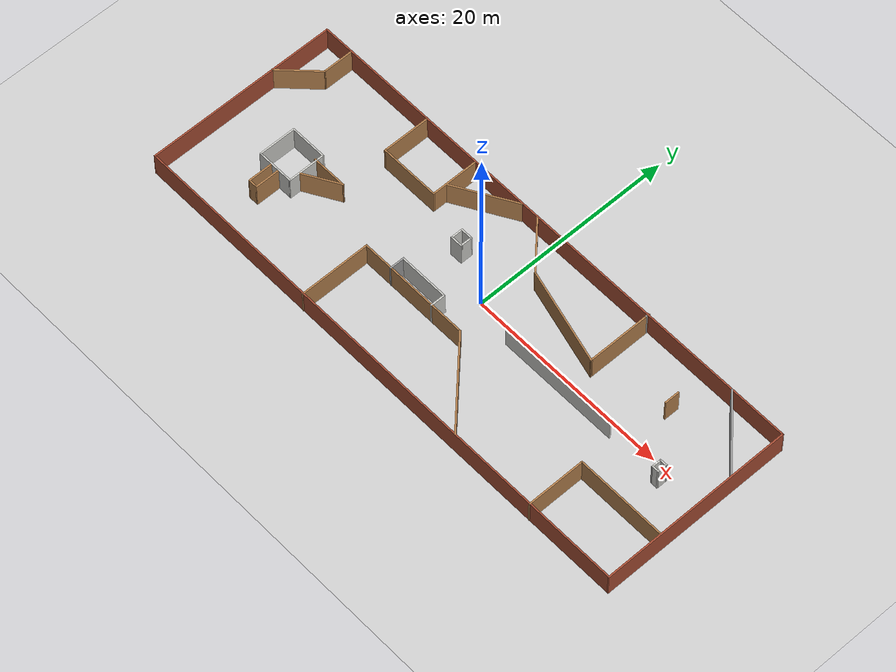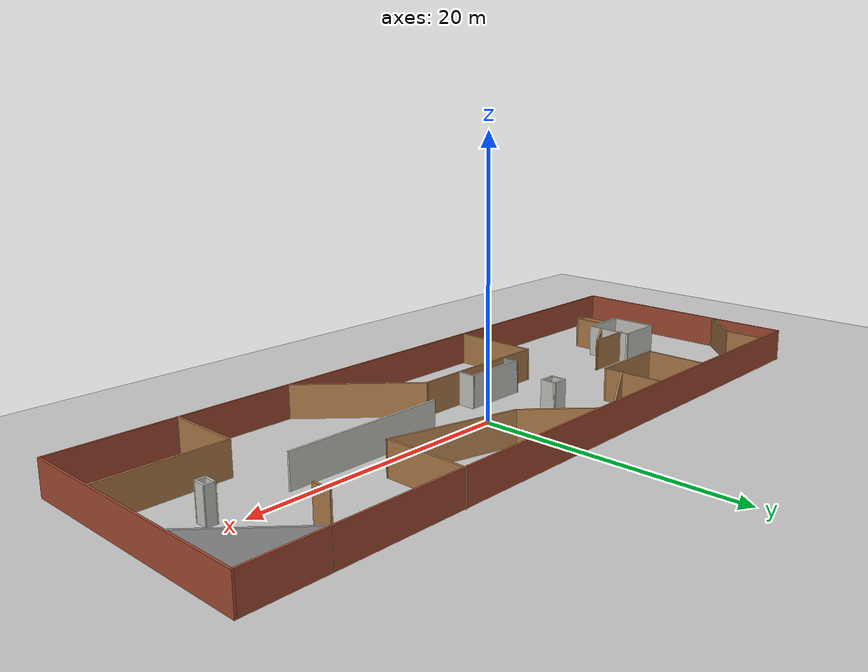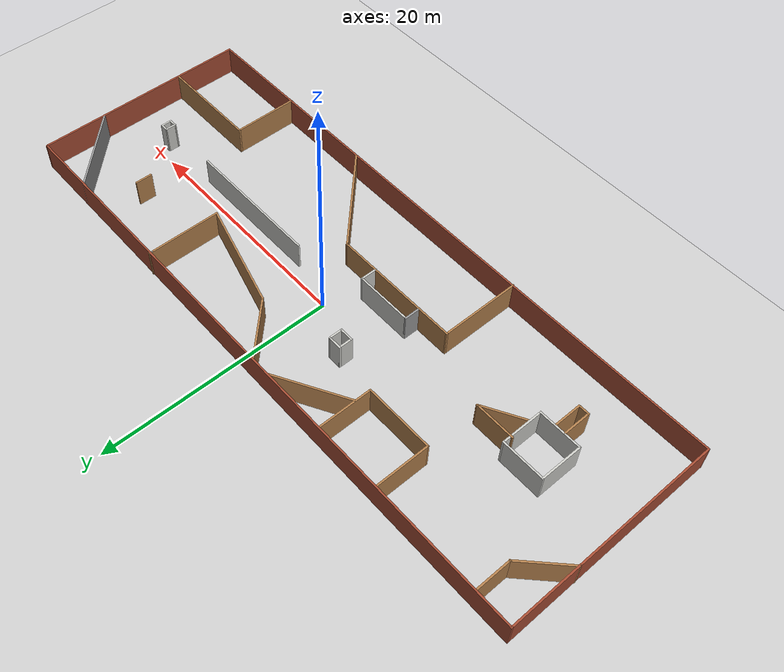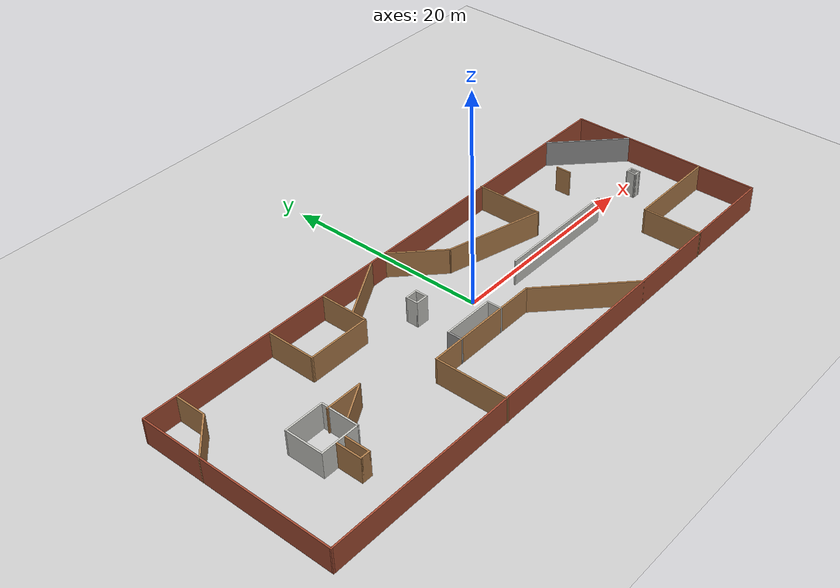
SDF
<sdf version="1.6">
 <world name="default">
  <model name="ground_plane">
   <static>1</static>
   <link name="link">
    <collision name="collision">
     <geometry><plane><normal>0 0 1</normal><size>100 100</size></plane></geometry>
     <surface><friction><ode><mu>100</mu><mu2>50</mu2></ode></friction></surface>
    </collision>
    <visual name="visual">
     <cast_shadows>0</cast_shadows>
     <geometry><plane><normal>0 0 1</normal><size>100 100</size></plane></geometry>
     <material>
      <script><uri>file://media/materials/scripts/gazebo.material</uri><name>Gazebo/Grey</name></script>
     </material>
    </visual>
   </link>
  </model>
  <model name="CustomHouse">
   <pose>-0.675706 -1.43163 0 0 -0 0</pose>
   <link name="Wall_0">
    <collision name="Wall_0_Collision">
     <geometry><box><size>53.75 0.15 2.5</size></box></geometry>
     <pose>0 0 1.25 0 -0 0</pose>
    </collision>
    <visual name="Wall_0_Visual">
     <pose>0 0 1.25 0 -0 0</pose>
     <geometry><box><size>53.75 0.15 2.5</size></box></geometry>
     <material>
      <script><uri>file://media/materials/scripts/gazebo.material</uri><name>Gazebo/Bricks</name></script>
      <ambient>1 1 1 1</ambient>
     </material>
     <meta><layer>0</layer></meta>
    </visual>
    <pose>0.022462 -9.43673 0 0 -0 0</pose>
   </link>
   <link name="Wall_1">
    <collision name="Wall_1_Collision">
     <geometry><box><size>19 0.15 2.5</size></box></geometry>
     <pose>0 0 1.25 0 -0 0</pose>
    </collision>
    <visual name="Wall_1_Visual">
     <pose>0 0 1.25 0 -0 0</pose>
     <geometry><box><size>19 0.15 2.5</size></box></geometry>
     <material>
      <script><uri>file://media/materials/scripts/gazebo.material</uri><name>Gazebo/Bricks</name></script>
      <ambient>1 1 1 1</ambient>
     </material>
     <meta><layer>0</layer></meta>
    </visual>
    <pose>26.8225 -0.011732 0 0 -0 1.5708</pose>
   </link>
   <link name="Wall_11">
    <collision name="Wall_11_Collision">
     <geometry><box><size>11.25 0.15 2.5</size></box></geometry>
     <pose>0 0 1.25 0 -0 0</pose>
    </collision>
    <visual name="Wall_11_Visual">
     <pose>0 0 1.25 0 -0 0</pose>
     <geometry><box><size>11.25 0.15 2.5</size></box></geometry>
     <material>
      <script><uri>file://media/materials/scripts/gazebo.material</uri><name>Gazebo/Wood</name></script>
      <ambient>1 1 1 1</ambient>
     </material>
     <meta><layer>0</layer></meta>
    </visual>
    <pose>-2.9814 -2.62851 0 0 -0 0</pose>
   </link>
   <link name="Wall_12">
    <collision name="Wall_12_Collision">
     <geometry><box><size>9.75 0.15 2.5</size></box></geometry>
     <pose>0 0 1.25 0 -0 0</pose>
    </collision>
    <visual name="Wall_12_Visual">
     <pose>0 0 1.25 0 -0 0</pose>
     <geometry><box><size>9.75 0.15 2.5</size></box></geometry>
     <material>
      <script><uri>file://media/materials/scripts/gazebo.material</uri><name>Gazebo/Wood</name></script>
      <ambient>1 1 1 1</ambient>
     </material>
     <meta><layer>0</layer></meta>
    </visual>
    <pose>5.96272 -6.02262 0 0 0 -0.785398</pose>
   </link>
   <link name="Wall_14">
    <collision name="Wall_14_Collision">
     <geometry><box><size>5.5 0.15 2.5</size></box></geometry>
     <pose>0 0 1.25 0 -0 0</pose>
    </collision>
    <visual name="Wall_14_Visual">
     <pose>0 0 1.25 0 -0 0</pose>
     <geometry><box><size>5.5 0.15 2.5</size></box></geometry>
     <material>
      <script><uri>file://media/materials/scripts/gazebo.material</uri><name>Gazebo/Wood</name></script>
      <ambient>1 1 1 1</ambient>
     </material>
     <meta><layer>0</layer></meta>
    </visual>
    <pose>0.740115 7.43998 0 0 0 -0.785398</pose>
   </link>
   <link name="Wall_15">
    <collision name="Wall_15_Collision">
     <geometry><box><size>9.5 0.15 2.5</size></box></geometry>
     <pose>0 0 1.25 0 -0 0</pose>
    </collision>
    <visual name="Wall_15_Visual">
     <pose>0 0 1.25 0 -0 0</pose>
     <geometry><box><size>9.5 0.15 2.5</size></box></geometry>
     <material>
      <script><uri>file://media/materials/scripts/gazebo.material</uri><name>Gazebo/Wood</name></script>
      <ambient>1 1 1 1</ambient>
     </material>
     <meta><layer>0</layer></meta>
    </visual>
    <pose>7.14733 4.33849 0 0 0 -0.261799</pose>
   </link>
   <link name="Wall_17">
    <collision name="Wall_17_Collision">
     <geometry><box><size>0.15 0.15 2.5</size></box></geometry>
     <pose>0 0 1.25 0 -0 0</pose>
    </collision>
    <visual name="Wall_17_Visual">
     <pose>0 0 1.25 0 -0 0</pose>
     <geometry><box><size>0.15 0.15 2.5</size></box></geometry>
     <material>
      <script><uri>file://media/materials/scripts/gazebo.material</uri><name>Gazebo/Grey</name></script>
      <ambient>1 1 1 1</ambient>
     </material>
     <meta><layer>0</layer></meta>
    </visual>
    <pose>11.663 9.22851 0 0 -0 0</pose>
   </link>
   <link name="Wall_19">
    <collision name="Wall_19_Collision">
     <geometry><box><size>6.5 0.15 2.5</size></box></geometry>
     <pose>0 0 1.25 0 -0 0</pose>
    </collision>
    <visual name="Wall_19_Visual">
     <pose>0 0 1.25 0 -0 0</pose>
     <geometry><box><size>6.5 0.15 2.5</size></box></geometry>
     <material>
      <script><uri>file://media/materials/scripts/gazebo.material</uri><name>Gazebo/Wood</name></script>
      <ambient>1 1 1 1</ambient>
     </material>
     <meta><layer>0</layer></meta>
    </visual>
    <pose>11.663 6.30351 0 0 -0 1.5708</pose>
   </link>
   <link name="Wall_2">
    <collision name="Wall_2_Collision">
     <geometry><box><size>53.75 0.15 2.5</size></box></geometry>
     <pose>0 0 1.25 0 -0 0</pose>
    </collision>
    <visual name="Wall_2_Visual">
     <pose>0 0 1.25 0 -0 0</pose>
     <geometry><box><size>53.75 0.15 2.5</size></box></geometry>
     <material>
      <script><uri>file://media/materials/scripts/gazebo.material</uri><name>Gazebo/Bricks</name></script>
      <ambient>1 1 1 1</ambient>
     </material>
     <meta><layer>0</layer></meta>
    </visual>
    <pose>0.022462 9.41327 0 0 -0 3.14159</pose>
   </link>
   <link name="Wall_21">
    <collision name="Wall_21_Collision">
     <geometry><box><size>9 0.15 2.5</size></box></geometry>
     <pose>0 0 1.25 0 -0 0</pose>
    </collision>
    <visual name="Wall_21_Visual">
     <pose>0 0 1.25 0 -0 0</pose>
     <geometry><box><size>9 0.15 2.5</size></box></geometry>
     <material>
      <script><uri>file://media/materials/scripts/gazebo.material</uri><name>Gazebo/Wood</name></script>
      <ambient>1 1 1 1</ambient>
     </material>
     <meta><layer>0</layer></meta>
    </visual>
    <pose>22.3836 -3.86851 0 0 -0 3.14159</pose>
   </link>
   <link name="Wall_22">
    <collision name="Wall_22_Collision">
     <geometry><box><size>5.75 0.15 2.5</size></box></geometry>
     <pose>0 0 1.25 0 -0 0</pose>
    </collision>
    <visual name="Wall_22_Visual">
     <pose>0 0 1.25 0 -0 0</pose>
     <geometry><box><size>5.75 0.15 2.5</size></box></geometry>
     <material>
      <script><uri>file://media/materials/scripts/gazebo.material</uri><name>Gazebo/Wood</name></script>
      <ambient>1 1 1 1</ambient>
     </material>
     <meta><layer>0</layer></meta>
    </visual>
    <pose>17.9586 -6.66851 0 0 0 -1.5708</pose>
   </link>
   <link name="Wall_24">
    <collision name="Wall_24_Collision">
     <geometry><box><size>8 0.15 2.5</size></box></geometry>
     <pose>0 0 1.25 0 -0 0</pose>
    </collision>
    <visual name="Wall_24_Visual">
     <pose>0 0 1.25 0 -0 0</pose>
     <geometry><box><size>8 0.15 2.5</size></box></geometry>
     <material>
      <script><uri>file://media/materials/scripts/gazebo.material</uri><name>Gazebo/Grey</name></script>
      <ambient>1 1 1 1</ambient>
     </material>
     <meta><layer>0</layer></meta>
    </visual>
    <pose>23.984 6.6161 0 0 0 -0.785398</pose>
   </link>
   <link name="Wall_27">
    <collision name="Wall_27_Collision">
     <geometry><box><size>3.75 0.15 2.5</size></box></geometry>
     <pose>0 0 1.25 0 -0 0</pose>
    </collision>
    <visual name="Wall_27_Visual">
     <pose>0 0 1.25 0 -0 0</pose>
     <geometry><box><size>3.75 0.15 2.5</size></box></geometry>
     <material>
      <script><uri>file://media/materials/scripts/gazebo.material</uri><name>Gazebo/CeilingTiled</name></script>
      <ambient>1 1 1 1</ambient>
     </material>
     <meta><layer>0</layer></meta>
    </visual>
    <pose>-21.0914 -1.14851 0 0 0 -1.5708</pose>
   </link>
   <link name="Wall_28">
    <collision name="Wall_28_Collision">
     <geometry><box><size>3.75 0.15 2.5</size></box></geometry>
     <pose>0 0 1.25 0 -0 0</pose>
    </collision>
    <visual name="Wall_28_Visual">
     <pose>0 0 1.25 0 -0 0</pose>
     <geometry><box><size>3.75 0.15 2.5</size></box></geometry>
     <material>
      <script><uri>file://media/materials/scripts/gazebo.material</uri><name>Gazebo/CeilingTiled</name></script>
      <ambient>1 1 1 1</ambient>
     </material>
     <meta><layer>0</layer></meta>
    </visual>
    <pose>-19.2914 -2.94851 0 0 -0 0</pose>
   </link>
   <link name="Wall_29">
    <collision name="Wall_29_Collision">
     <geometry><box><size>3.75 0.15 2.5</size></box></geometry>
     <pose>0 0 1.25 0 -0 0</pose>
    </collision>
    <visual name="Wall_29_Visual">
     <pose>0 0 1.25 0 -0 0</pose>
     <geometry><box><size>3.75 0.15 2.5</size></box></geometry>
     <material>
      <script><uri>file://media/materials/scripts/gazebo.material</uri><name>Gazebo/CeilingTiled</name></script>
      <ambient>1 1 1 1</ambient>
     </material>
     <meta><layer>0</layer></meta>
    </visual>
    <pose>-17.4914 -1.14851 0 0 -0 1.5708</pose>
   </link>
   <link name="Wall_3">
    <collision name="Wall_3_Collision">
     <geometry><box><size>19 0.15 2.5</size></box></geometry>
     <pose>0 0 1.25 0 -0 0</pose>
    </collision>
    <visual name="Wall_3_Visual">
     <pose>0 0 1.25 0 -0 0</pose>
     <geometry><box><size>19 0.15 2.5</size></box></geometry>
     <material>
      <script><uri>file://media/materials/scripts/gazebo.material</uri><name>Gazebo/Bricks</name></script>
      <ambient>1 1 1 1</ambient>
     </material>
     <meta><layer>0</layer></meta>
    </visual>
    <pose>-26.7775 -0.011732 0 0 0 -1.5708</pose>
   </link>
   <link name="Wall_30">
    <collision name="Wall_30_Collision">
     <geometry><box><size>3.75 0.15 2.5</size></box></geometry>
     <pose>0 0 1.25 0 -0 0</pose>
    </collision>
    <visual name="Wall_30_Visual">
     <pose>0 0 1.25 0 -0 0</pose>
     <geometry><box><size>3.75 0.15 2.5</size></box></geometry>
     <material>
      <script><uri>file://media/materials/scripts/gazebo.material</uri><name>Gazebo/CeilingTiled</name></script>
      <ambient>1 1 1 1</ambient>
     </material>
     <meta><layer>0</layer></meta>
    </visual>
    <pose>-19.2914 0.65149 0 0 -0 3.14159</pose>
   </link>
   <link name="Wall_32">
    <collision name="Wall_32_Collision">
     <geometry><box><size>4.5 0.15 2.5</size></box></geometry>
     <pose>0 0 1.25 0 -0 0</pose>
    </collision>
    <visual name="Wall_32_Visual">
     <pose>0 0 1.25 0 -0 0</pose>
     <geometry><box><size>4.5 0.15 2.5</size></box></geometry>
     <material>
      <script><uri>file://media/materials/scripts/gazebo.material</uri><name>Gazebo/Wood</name></script>
      <ambient>1 1 1 1</ambient>
     </material>
     <meta><layer>0</layer></meta>
    </visual>
    <pose>-25.2534 4.86945 0 0 -0 0.785398</pose>
   </link>
   <link name="Wall_33">
    <collision name="Wall_33_Collision">
     <geometry><box><size>3 0.15 2.5</size></box></geometry>
     <pose>0 0 1.25 0 -0 0</pose>
    </collision>
    <visual name="Wall_33_Visual">
     <pose>0 0 1.25 0 -0 0</pose>
     <geometry><box><size>3 0.15 2.5</size></box></geometry>
     <material>
      <script><uri>file://media/materials/scripts/gazebo.material</uri><name>Gazebo/Wood</name></script>
      <ambient>1 1 1 1</ambient>
     </material>
     <meta><layer>0</layer></meta>
    </visual>
    <pose>-23.7155 7.8324 0 0 -0 1.5708</pose>
   </link>
   <link name="Wall_35">
    <collision name="Wall_35_Collision">
     <geometry><box><size>1.5 0.15 2.5</size></box></geometry>
     <pose>0 0 1.25 0 -0 0</pose>
    </collision>
    <visual name="Wall_35_Visual">
     <pose>0 0 1.25 0 -0 0</pose>
     <geometry><box><size>1.5 0.15 2.5</size></box></geometry>
     <material>
      <script><uri>file://media/materials/scripts/gazebo.material</uri><name>Gazebo/Grey</name></script>
      <ambient>1 1 1 1</ambient>
     </material>
     <meta><layer>0</layer></meta>
    </visual>
    <pose>-5.5914 -1.97351 0 0 -0 1.5708</pose>
   </link>
   <link name="Wall_36">
    <collision name="Wall_36_Collision">
     <geometry><box><size>5 0.15 2.5</size></box></geometry>
     <pose>0 0 1.25 0 -0 0</pose>
    </collision>
    <visual name="Wall_36_Visual">
     <pose>0 0 1.25 0 -0 0</pose>
     <geometry><box><size>5 0.15 2.5</size></box></geometry>
     <material>
      <script><uri>file://media/materials/scripts/gazebo.material</uri><name>Gazebo/CeilingTiled</name></script>
      <ambient>1 1 1 1</ambient>
     </material>
     <meta><layer>0</layer></meta>
    </visual>
    <pose>-3.1664 -1.29851 0 0 -0 0</pose>
   </link>
   <link name="Wall_37">
    <collision name="Wall_37_Collision">
     <geometry><box><size>1.5 0.15 2.5</size></box></geometry>
     <pose>0 0 1.25 0 -0 0</pose>
    </collision>
    <visual name="Wall_37_Visual">
     <pose>0 0 1.25 0 -0 0</pose>
     <geometry><box><size>1.5 0.15 2.5</size></box></geometry>
     <material>
      <script><uri>file://media/materials/scripts/gazebo.material</uri><name>Gazebo/CeilingTiled</name></script>
      <ambient>1 1 1 1</ambient>
     </material>
     <meta><layer>0</layer></meta>
    </visual>
    <pose>-0.741396 -1.97351 0 0 0 -1.5708</pose>
   </link>
   <link name="Wall_5">
    <collision name="Wall_5_Collision">
     <geometry><box><size>4.75 0.15 2.5</size></box></geometry>
     <pose>0 0 1.25 0 -0 0</pose>
    </collision>
    <visual name="Wall_5_Visual">
     <pose>0 0 1.25 0 -0 0</pose>
     <geometry><box><size>4.75 0.15 2.5</size></box></geometry>
     <material>
      <script><uri>file://media/materials/scripts/gazebo.material</uri><name>Gazebo/Wood</name></script>
      <ambient>1 1 1 1</ambient>
     </material>
     <meta><layer>0</layer></meta>
    </visual>
    <pose>-8.5714 7.05149 0 0 0 -1.5708</pose>
   </link>
   <link name="Wall_6">
    <collision name="Wall_6_Collision">
     <geometry><box><size>6 0.15 2.5</size></box></geometry>
     <pose>0 0 1.25 0 -0 0</pose>
    </collision>
    <visual name="Wall_6_Visual">
     <pose>0 0 1.25 0 -0 0</pose>
     <geometry><box><size>6 0.15 2.5</size></box></geometry>
     <material>
      <script><uri>file://media/materials/scripts/gazebo.material</uri><name>Gazebo/Wood</name></script>
      <ambient>1 1 1 1</ambient>
     </material>
     <meta><layer>0</layer></meta>
    </visual>
    <pose>-11.4964 4.75149 0 0 -0 3.14159</pose>
   </link>
   <link name="Wall_7">
    <collision name="Wall_7_Collision">
     <geometry><box><size>4.75 0.15 2.5</size></box></geometry>
     <pose>0 0 1.25 0 -0 0</pose>
    </collision>
    <visual name="Wall_7_Visual">
     <pose>0 0 1.25 0 -0 0</pose>
     <geometry><box><size>4.75 0.15 2.5</size></box></geometry>
     <material>
      <script><uri>file://media/materials/scripts/gazebo.material</uri><name>Gazebo/Wood</name></script>
      <ambient>1 1 1 1</ambient>
     </material>
     <meta><layer>0</layer></meta>
    </visual>
    <pose>-14.4214 7.05149 0 0 -0 1.5708</pose>
   </link>
   <link name="Wall_9">
    <collision name="Wall_9_Collision">
     <geometry><box><size>7 0.15 2.5</size></box></geometry>
     <pose>0 0 1.25 0 -0 0</pose>
    </collision>
    <visual name="Wall_9_Visual">
     <pose>0 0 1.25 0 -0 0</pose>
     <geometry><box><size>7 0.15 2.5</size></box></geometry>
     <material>
      <script><uri>file://media/materials/scripts/gazebo.material</uri><name>Gazebo/Wood</name></script>
      <ambient>1 1 1 1</ambient>
     </material>
     <meta><layer>0</layer></meta>
    </visual>
    <pose>-8.5314 -6.05351 0 0 0 -1.5708</pose>
   </link>
   <static>1</static>
  </model>
  <model name="AraHome2">
   <pose>0.784445 0.567563 0 0 -0 0</pose>
   <link name="Wall_10">
    <collision name="Wall_10_Collision">
     <geometry><box><size>1.25 0.15 2.5</size></box></geometry>
     <pose>0 0 1.25 0 -0 0</pose>
    </collision>
    <visual name="Wall_10_Visual">
     <pose>0 0 1.25 0 -0 0</pose>
     <geometry><box><size>1.25 0.15 2.5</size></box></geometry>
     <material>
      <script><uri>file://media/materials/scripts/gazebo.material</uri><name>Gazebo/CeilingTiled</name></script>
      <ambient>1 1 1 1</ambient>
     </material>
     <meta><layer>0</layer></meta>
    </visual>
    <pose>-5.89679 1.50483 0 0 0 -1.5708</pose>
   </link>
   <link name="Wall_15">
    <collision name="Wall_15_Collision">
     <geometry><box><size>3.5 0.15 2.5</size></box></geometry>
     <pose>0 0 1.25 0 -0 0</pose>
    </collision>
    <visual name="Wall_15_Visual">
     <pose>0 0 1.25 0 -0 0</pose>
     <geometry><box><size>3.5 0.15 2.5</size></box></geometry>
     <material>
      <script><uri>file://media/materials/scripts/gazebo.material</uri><name>Gazebo/Wood</name></script>
      <ambient>1 1 1 1</ambient>
     </material>
     <meta><layer>0</layer></meta>
    </visual>
    <pose>-17.4009 -2.05651 0 0 -0 0</pose>
   </link>
   <link name="Wall_16">
    <collision name="Wall_16_Collision">
     <geometry><box><size>3.75 0.15 2.5</size></box></geometry>
     <pose>0 0 1.25 0 -0 0</pose>
    </collision>
    <visual name="Wall_16_Visual">
     <pose>0 0 1.25 0 -0 0</pose>
     <geometry><box><size>3.75 0.15 2.5</size></box></geometry>
     <material>
      <script><uri>file://media/materials/scripts/gazebo.material</uri><name>Gazebo/Wood</name></script>
      <ambient>1 1 1 1</ambient>
     </material>
     <meta><layer>0</layer></meta>
    </visual>
    <pose>-17.2848 -2.95651 0 0 0 -2.61799</pose>
   </link>
   <link name="Wall_19">
    <collision name="Wall_19_Collision">
     <geometry><box><size>2.5 0.15 2.5</size></box></geometry>
     <pose>0 0 1.25 0 -0 0</pose>
    </collision>
    <visual name="Wall_19_Visual">
     <pose>0 0 1.25 0 -0 0</pose>
     <geometry><box><size>2.5 0.15 2.5</size></box></geometry>
     <material>
      <script><uri>file://media/materials/scripts/gazebo.material</uri><name>Gazebo/Wood</name></script>
      <ambient>1 1 1 1</ambient>
     </material>
     <meta><layer>0</layer></meta>
    </visual>
    <pose>-21.1664 -6.18697 0 0 0 -1.5708</pose>
   </link>
   <link name="Wall_2">
    <collision name="Wall_2_Collision">
     <geometry><box><size>6.5 0.15 2.5</size></box></geometry>
     <pose>0 0 1.25 0 -0 0</pose>
    </collision>
    <visual name="Wall_2_Visual">
     <pose>0 0 1.25 0 -0 0</pose>
     <geometry><box><size>6.5 0.15 2.5</size></box></geometry>
     <material>
      <script><uri>file://media/materials/scripts/gazebo.material</uri><name>Gazebo/Wood</name></script>
      <ambient>1 1 1 1</ambient>
     </material>
     <meta><layer>0</layer></meta>
    </visual>
    <pose>-7.20224 5.74702 0 0 -0 0.523599</pose>
   </link>
   <link name="Wall_20">
    <collision name="Wall_20_Collision">
     <geometry><box><size>1 0.15 2.5</size></box></geometry>
     <pose>0 0 1.25 0 -0 0</pose>
    </collision>
    <visual name="Wall_20_Visual">
     <pose>0 0 1.25 0 -0 0</pose>
     <geometry><box><size>1 0.15 2.5</size></box></geometry>
     <material>
      <script><uri>file://media/materials/scripts/gazebo.material</uri><name>Gazebo/Wood</name></script>
      <ambient>1 1 1 1</ambient>
     </material>
     <meta><layer>0</layer></meta>
    </visual>
    <pose>-20.7414 -7.36197 0 0 -0 0</pose>
   </link>
   <link name="Wall_21">
    <collision name="Wall_21_Collision">
     <geometry><box><size>2.5 0.15 2.5</size></box></geometry>
     <pose>0 0 1.25 0 -0 0</pose>
    </collision>
    <visual name="Wall_21_Visual">
     <pose>0 0 1.25 0 -0 0</pose>
     <geometry><box><size>2.5 0.15 2.5</size></box></geometry>
     <material>
      <script><uri>file://media/materials/scripts/gazebo.material</uri><name>Gazebo/Wood</name></script>
      <ambient>1 1 1 1</ambient>
     </material>
     <meta><layer>0</layer></meta>
    </visual>
    <pose>-20.3164 -6.18697 0 0 -0 1.5708</pose>
   </link>
   <link name="Wall_27">
    <collision name="Wall_27_Collision">
     <geometry><box><size>12 0.15 2.5</size></box></geometry>
     <pose>0 0 1.25 0 -0 0</pose>
    </collision>
    <visual name="Wall_27_Visual">
     <pose>0 0 1.25 0 -0 0</pose>
     <geometry><box><size>12 0.15 2.5</size></box></geometry>
     <material>
      <script><uri>file://media/materials/scripts/gazebo.material</uri><name>Gazebo/CeilingTiled</name></script>
      <ambient>1 1 1 1</ambient>
     </material>
     <meta><layer>0</layer></meta>
    </visual>
    <pose>9.36638 -1.6915 0 0 -0 0</pose>
   </link>
   <link name="Wall_30">
    <collision name="Wall_30_Collision">
     <geometry><box><size>1.5 0.15 2.5</size></box></geometry>
     <pose>0 0 1.25 0 -0 0</pose>
    </collision>
    <visual name="Wall_30_Visual">
     <pose>0 0 1.25 0 -0 0</pose>
     <geometry><box><size>1.5 0.15 2.5</size></box></geometry>
     <material>
      <script><uri>file://media/materials/scripts/gazebo.material</uri><name>Gazebo/Wood</name></script>
      <ambient>1 1 1 1</ambient>
     </material>
     <meta><layer>0</layer></meta>
    </visual>
    <pose>17.038 3.41114 0 0 -0 1.5708</pose>
   </link>
   <link name="Wall_32">
    <collision name="Wall_32_Collision">
     <geometry><box><size>1.00018 0.15 2.5</size></box></geometry>
     <pose>0 0 1.25 0 -0 0</pose>
    </collision>
    <visual name="Wall_32_Visual">
     <pose>0 0 1.25 0 -0 0</pose>
     <geometry><box><size>1.00018 0.15 2.5</size></box></geometry>
     <material>
      <script><uri>file://media/materials/scripts/gazebo.material</uri><name>Gazebo/CeilingTiled</name></script>
      <ambient>1 1 1 1</ambient>
     </material>
     <meta><layer>0</layer></meta>
    </visual>
    <pose>20.5447 -1.68399 0 0 0 -1.59125</pose>
   </link>
   <link name="Wall_33">
    <collision name="Wall_33_Collision">
     <geometry><box><size>0.778502 0.15 2.5</size></box></geometry>
     <pose>0 0 1.25 0 -0 0</pose>
    </collision>
    <visual name="Wall_33_Visual">
     <pose>0 0 1.25 0 -0 0</pose>
     <geometry><box><size>0.778502 0.15 2.5</size></box></geometry>
     <material>
      <script><uri>file://media/materials/scripts/gazebo.material</uri><name>Gazebo/CeilingTiled</name></script>
      <ambient>1 1 1 1</ambient>
     </material>
     <meta><layer>0</layer></meta>
    </visual>
    <pose>20.8501 -2.1003 0 0 -0 0.027675</pose>
   </link>
   <link name="Wall_34">
    <collision name="Wall_34_Collision">
     <geometry><box><size>1 0.15 2.5</size></box></geometry>
     <pose>0 0 1.25 0 -0 0</pose>
    </collision>
    <visual name="Wall_34_Visual">
     <pose>0 0 1.25 0 -0 0</pose>
     <geometry><box><size>1 0.15 2.5</size></box></geometry>
     <material>
      <script><uri>file://media/materials/scripts/gazebo.material</uri><name>Gazebo/CeilingTiled</name></script>
      <ambient>1 1 1 1</ambient>
     </material>
     <meta><layer>0</layer></meta>
    </visual>
    <pose>21.1643 -1.68399 0 0 -0 1.5708</pose>
   </link>
   <link name="Wall_35">
    <collision name="Wall_35_Collision">
     <geometry><box><size>0.761117 0.15 2.5</size></box></geometry>
     <pose>0 0 1.25 0 -0 0</pose>
    </collision>
    <visual name="Wall_35_Visual">
     <pose>0 0 1.25 0 -0 0</pose>
     <geometry><box><size>0.761117 0.15 2.5</size></box></geometry>
     <material>
      <script><uri>file://media/materials/scripts/gazebo.material</uri><name>Gazebo/CeilingTiled</name></script>
      <ambient>1 1 1 1</ambient>
     </material>
     <meta><layer>0</layer></meta>
    </visual>
    <pose>20.8588 -1.2503 0 0 0 -3.11313</pose>
   </link>
   <link name="Wall_7">
    <collision name="Wall_7_Collision">
     <geometry><box><size>1.25 0.15 2.5</size></box></geometry>
     <pose>0 0 1.25 0 -0 0</pose>
    </collision>
    <visual name="Wall_7_Visual">
     <pose>0 0 1.25 0 -0 0</pose>
     <geometry><box><size>1.25 0.15 2.5</size></box></geometry>
     <material>
      <script><uri>file://media/materials/scripts/gazebo.material</uri><name>Gazebo/CeilingTiled</name></script>
      <ambient>1 1 1 1</ambient>
     </material>
     <meta><layer>0</layer></meta>
    </visual>
    <pose>-5.34679 0.954826 0 0 -0 0</pose>
   </link>
   <link name="Wall_8">
    <collision name="Wall_8_Collision">
     <geometry><box><size>1.25 0.15 2.5</size></box></geometry>
     <pose>0 0 1.25 0 -0 0</pose>
    </collision>
    <visual name="Wall_8_Visual">
     <pose>0 0 1.25 0 -0 0</pose>
     <geometry><box><size>1.25 0.15 2.5</size></box></geometry>
     <material>
      <script><uri>file://media/materials/scripts/gazebo.material</uri><name>Gazebo/CeilingTiled</name></script>
      <ambient>1 1 1 1</ambient>
     </material>
     <meta><layer>0</layer></meta>
    </visual>
    <pose>-4.79679 1.50483 0 0 -0 1.5708</pose>
   </link>
   <link name="Wall_9">
    <collision name="Wall_9_Collision">
     <geometry><box><size>1.25 0.15 2.5</size></box></geometry>
     <pose>0 0 1.25 0 -0 0</pose>
    </collision>
    <visual name="Wall_9_Visual">
     <pose>0 0 1.25 0 -0 0</pose>
     <geometry><box><size>1.25 0.15 2.5</size></box></geometry>
     <material>
      <script><uri>file://media/materials/scripts/gazebo.material</uri><name>Gazebo/CeilingTiled</name></script>
      <ambient>1 1 1 1</ambient>
     </material>
     <meta><layer>0</layer></meta>
    </visual>
    <pose>-5.34679 2.05483 0 0 -0 3.14159</pose>
   </link>
   <static>1</static>
  </model>
 </world>
</sdf>
